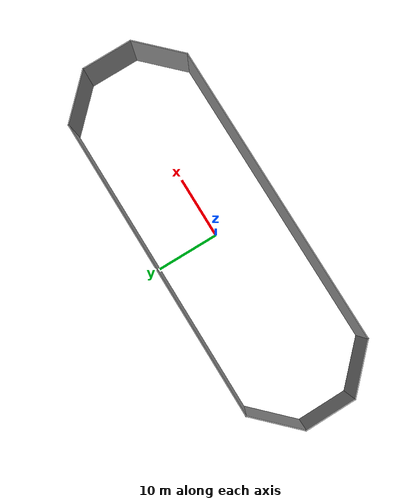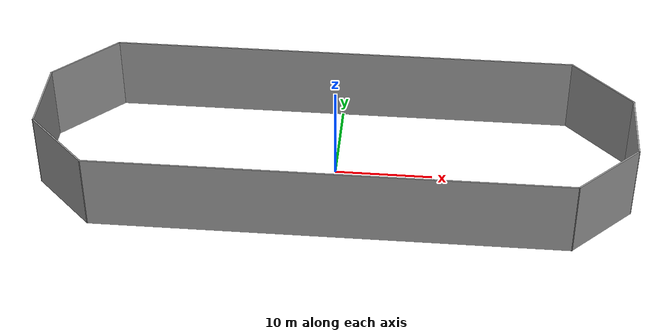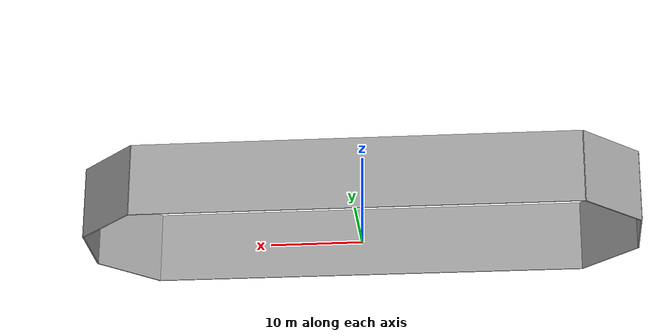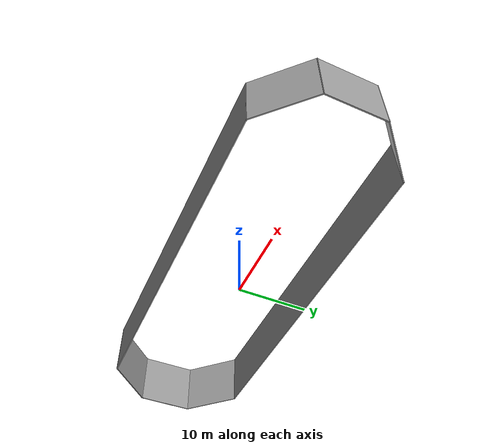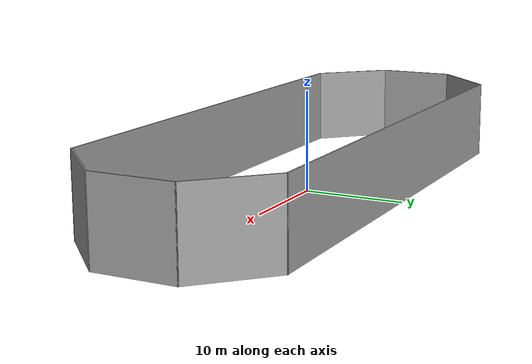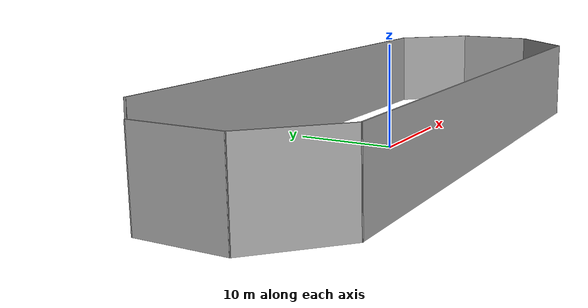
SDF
<?xml version='1.0'?>
<sdf version='1.6'>
  <model name='19052514EdgeWall'>
    <pose frame=''>0 0 0 0 -0 0</pose>
    <link name='Wall_31'>
      <collision name='Wall_31_Collision'>
        <geometry>
          <box>
            <size>48.15 0.15 8</size>
          </box>
        </geometry>
        <pose frame=''>0 0 4 0 -0 0</pose>
      </collision>
      <visual name='Wall_31_Visual'>
        <pose frame=''>0 0 4 0 -0 0</pose>
        <geometry>
          <box>
            <size>48.15 0.15 8</size>
          </box>
        </geometry>
        <material>
          <script>
            <uri>file://media/materials/scripts/gazebo.material</uri>
            <name>Gazebo/Grey</name>
          </script>
          <ambient>1 1 1 1</ambient>
        </material>
        <meta>
          <layer>0</layer>
        </meta>
      </visual>
      <pose frame=''>0 10 0 0 -0 0</pose>
    </link>
    <link name='Wall_32'>
      <collision name='Wall_32_Collision'>
        <geometry>
          <box>
            <size>8.63528 0.15 8</size>
          </box>
        </geometry>
        <pose frame=''>0 0 4 0 -0 0</pose>
      </collision>
      <visual name='Wall_32_Visual'>
        <pose frame=''>0 0 4 0 -0 0</pose>
        <geometry>
          <box>
            <size>8.63528 0.15 8</size>
          </box>
        </geometry>
        <material>
          <script>
            <uri>file://media/materials/scripts/gazebo.material</uri>
            <name>Gazebo/Grey</name>
          </script>
          <ambient>1 1 1 1</ambient>
        </material>
        <meta>
          <layer>0</layer>
        </meta>
      </visual>
      <pose frame=''>27 7 0 0 -0 -0.785398</pose>
    </link>
    <link name='Wall_33'>
      <collision name='Wall_33_Collision'>
        <geometry>
          <box>
            <size>8.15 0.15 8</size>
          </box>
        </geometry>
        <pose frame=''>0 0 4 0 -0 0</pose>
      </collision>
      <visual name='Wall_33_Visual'>
        <pose frame=''>0 0 4 0 -0 0</pose>
        <geometry>
          <box>
            <size>8.15 0.15 8</size>
          </box>
        </geometry>
        <material>
          <script>
            <uri>file://media/materials/scripts/gazebo.material</uri>
            <name>Gazebo/Grey</name>
          </script>
          <ambient>1 1 1 1</ambient>
        </material>
        <meta>
          <layer>0</layer>
        </meta>
      </visual>
      <pose frame=''>30 0 0 0 -0 -1.5708</pose>
    </link>
    <link name='Wall_34'>
      <collision name='Wall_34_Collision'>
        <geometry>
          <box>
            <size>8.63528 0.15 8</size>
          </box>
        </geometry>
        <pose frame=''>0 0 4 0 -0 0</pose>
      </collision>
      <visual name='Wall_34_Visual'>
        <pose frame=''>0 0 4 0 -0 0</pose>
        <geometry>
          <box>
            <size>8.63528 0.15 8</size>
          </box>
        </geometry>
        <material>
          <script>
            <uri>file://media/materials/scripts/gazebo.material</uri>
            <name>Gazebo/Grey</name>
          </script>
          <ambient>1 1 1 1</ambient>
        </material>
        <meta>
          <layer>0</layer>
        </meta>
      </visual>
      <pose frame=''>27 -7 0 0 -0 -2.35619</pose>
    </link>
    <link name='Wall_35'>
      <collision name='Wall_35_Collision'>
        <geometry>
          <box>
            <size>48.15 0.15 8</size>
          </box>
        </geometry>
        <pose frame=''>0 0 4 0 -0 0</pose>
      </collision>
      <visual name='Wall_35_Visual'>
        <pose frame=''>0 0 4 0 -0 0</pose>
        <geometry>
          <box>
            <size>48.15 0.15 8</size>
          </box>
        </geometry>
        <material>
          <script>
            <uri>file://media/materials/scripts/gazebo.material</uri>
            <name>Gazebo/Grey</name>
          </script>
          <ambient>1 1 1 1</ambient>
        </material>
        <meta>
          <layer>0</layer>
        </meta>
      </visual>
      <pose frame=''>0 -10 0 0 -0 3.14159</pose>
    </link>
    <link name='Wall_36'>
      <collision name='Wall_36_Collision'>
        <geometry>
          <box>
            <size>8.63528 0.15 8</size>
          </box>
        </geometry>
        <pose frame=''>0 0 4 0 -0 0</pose>
      </collision>
      <visual name='Wall_36_Visual'>
        <pose frame=''>0 0 4 0 -0 0</pose>
        <geometry>
          <box>
            <size>8.63528 0.15 8</size>
          </box>
        </geometry>
        <material>
          <script>
            <uri>file://media/materials/scripts/gazebo.material</uri>
            <name>Gazebo/Grey</name>
          </script>
          <ambient>1 1 1 1</ambient>
        </material>
        <meta>
          <layer>0</layer>
        </meta>
      </visual>
      <pose frame=''>-27 -7 0 0 -0 2.35619</pose>
    </link>
    <link name='Wall_37'>
      <collision name='Wall_37_Collision'>
        <geometry>
          <box>
            <size>8.15 0.15 8</size>
          </box>
        </geometry>
        <pose frame=''>0 0 4 0 -0 0</pose>
      </collision>
      <visual name='Wall_37_Visual'>
        <pose frame=''>0 0 4 0 -0 0</pose>
        <geometry>
          <box>
            <size>8.15 0.15 8</size>
          </box>
        </geometry>
        <material>
          <script>
            <uri>file://media/materials/scripts/gazebo.material</uri>
            <name>Gazebo/Grey</name>
          </script>
          <ambient>1 1 1 1</ambient>
        </material>
        <meta>
          <layer>0</layer>
        </meta>
      </visual>
      <pose frame=''>-30 0 0 0 -0 1.5708</pose>
    </link>
    <link name='Wall_38'>
      <collision name='Wall_38_Collision'>
        <geometry>
          <box>
            <size>8.63528 0.15 8</size>
          </box>
        </geometry>
        <pose frame=''>0 0 4 0 -0 0</pose>
      </collision>
      <visual name='Wall_38_Visual'>
        <pose frame=''>0 0 4 0 -0 0</pose>
        <geometry>
          <box>
            <size>8.63528 0.15 8</size>
          </box>
        </geometry>
        <material>
          <script>
            <uri>file://media/materials/scripts/gazebo.material</uri>
            <name>Gazebo/Grey</name>
          </script>
          <ambient>1 1 1 1</ambient>
        </material>
        <meta>
          <layer>0</layer>
        </meta>
      </visual>
      <pose frame=''>-27 7 0 0 -0 0.785398</pose>
    </link>
    <static>1</static>
  </model>
</sdf>
